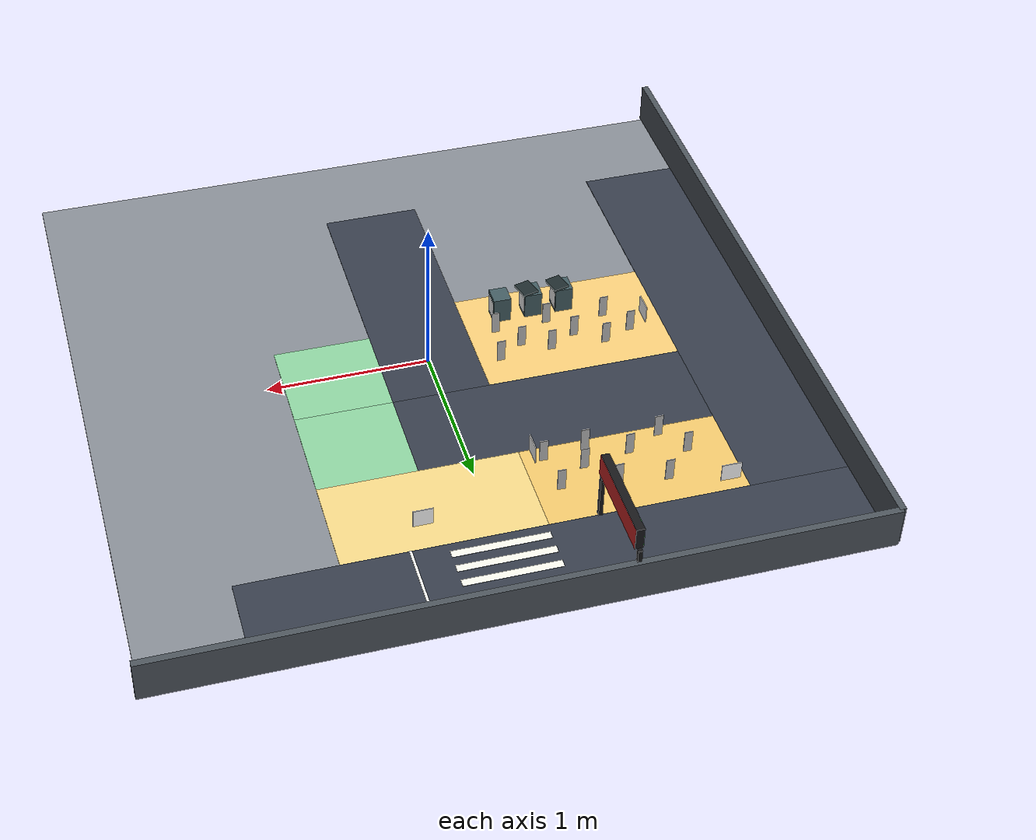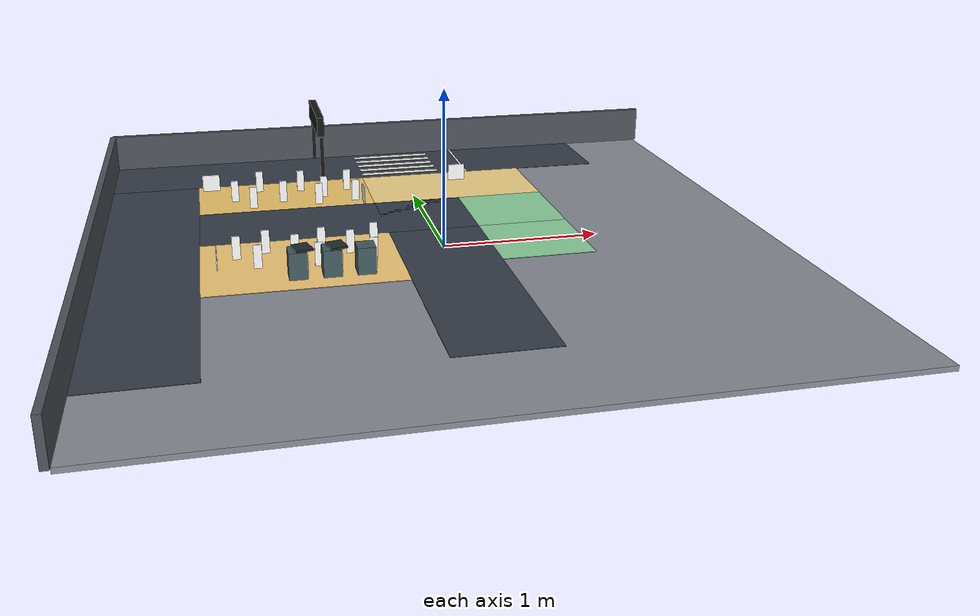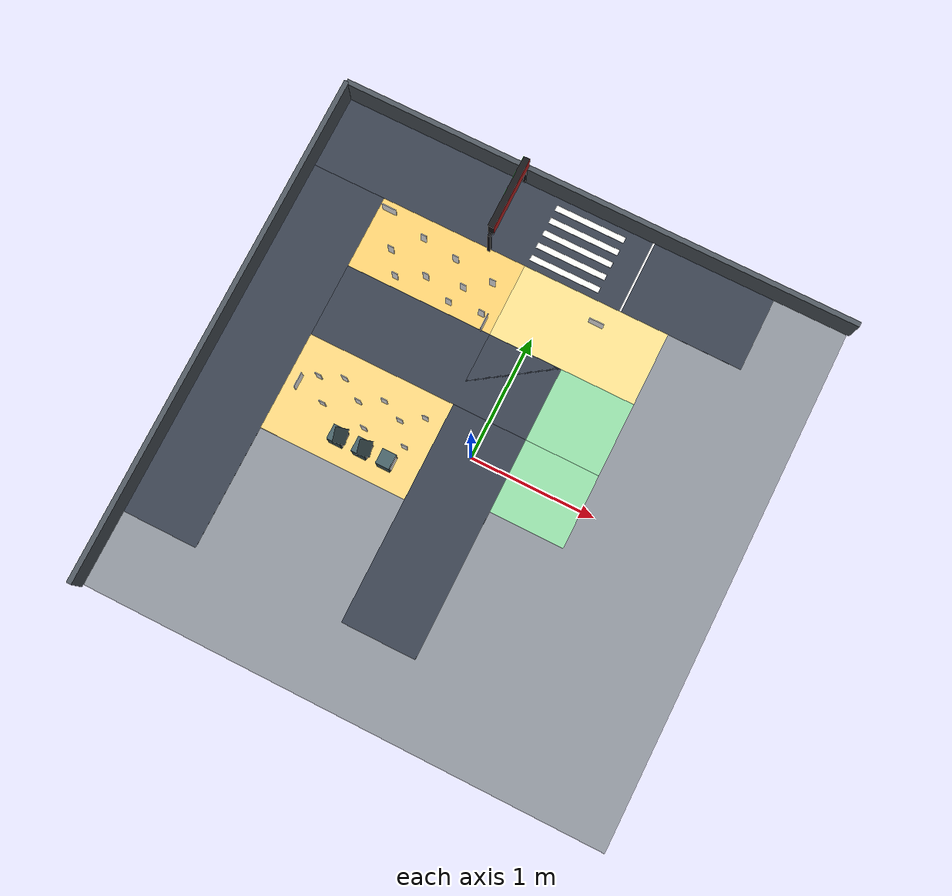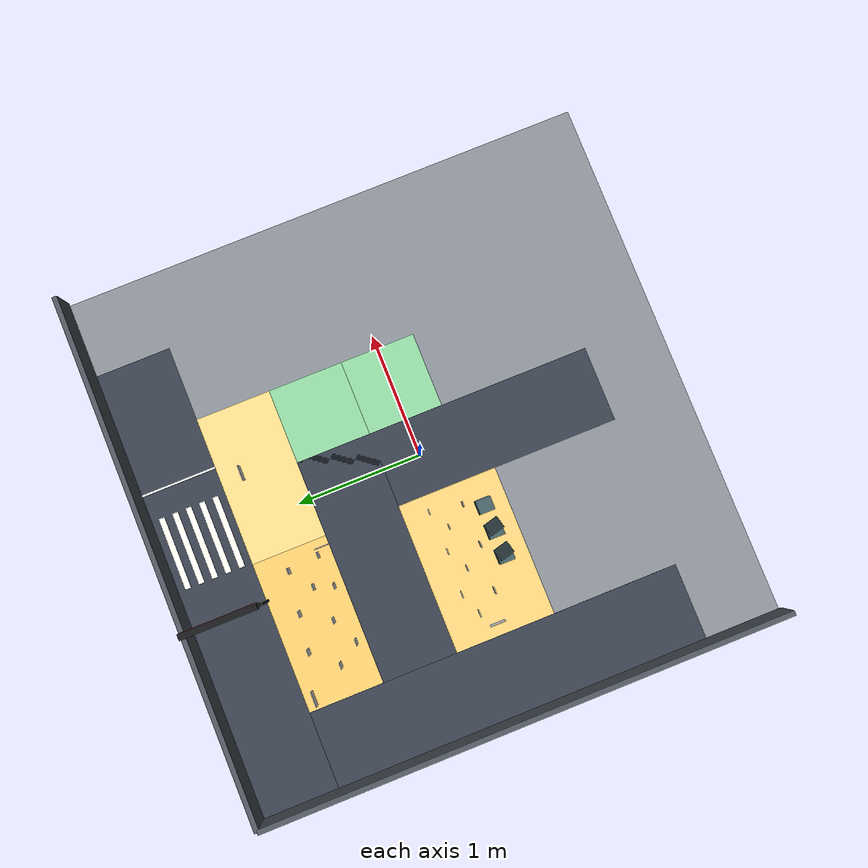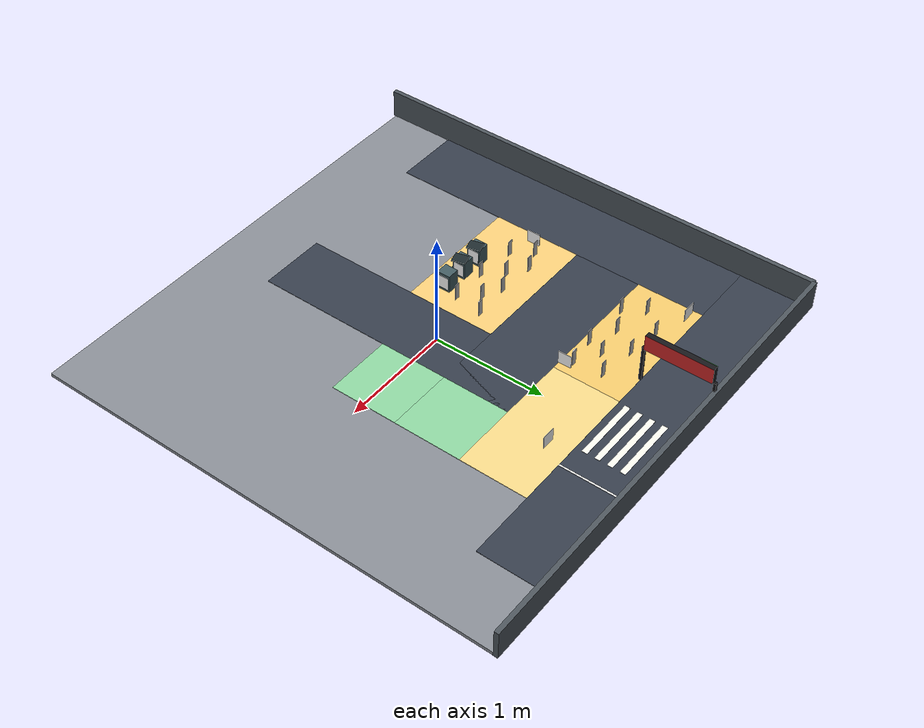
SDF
<sdf version="1.6">
 <world name="sq_community_4p2">
  <include><uri>model://sun</uri></include>
  <model name="sq4_floor">
   <static>true</static>
   <link name="floor">
    <visual name="floor_vis">
     <pose>0.0000 0.0000 -0.0150 0 0 0.00000</pose>
     <geometry><box><size>4.2000 4.2000 0.0300</size></box></geometry>
     <material>
      <ambient>0.5300 0.5500 0.5800 1.0000</ambient>
      <diffuse>0.5300 0.5500 0.5800 1.0000</diffuse>
     </material>
    </visual>
    <collision name="floor_col">
     <pose>0.0000 0.0000 -0.0150 0 0 0.00000</pose>
     <geometry><box><size>4.2000 4.2000 0.0300</size></box></geometry>
    </collision>
   </link>
  </model>
  <model name="sq4_road_top">
   <static>true</static>
   <pose>-0.3000 1.8000 0.0000 0 0 0.00000</pose>
   <link name="surface">
    <visual name="surface_vis">
     <pose>0.0000 0.0000 0.0015 0 0 0.00000</pose>
     <geometry><box><size>3.6000 0.6000 0.0030</size></box></geometry>
     <material>
      <ambient>0.2100 0.2400 0.2900 1.0000</ambient>
      <diffuse>0.2100 0.2400 0.2900 1.0000</diffuse>
     </material>
    </visual>
   </link>
  </model>
  <model name="sq4_road_west">
   <static>true</static>
   <pose>-1.8000 0.0000 0.0000 0 0 0.00000</pose>
   <link name="surface">
    <visual name="surface_vis">
     <pose>0.0000 0.0000 0.0015 0 0 0.00000</pose>
     <geometry><box><size>0.6000 3.0000 0.0030</size></box></geometry>
     <material>
      <ambient>0.2100 0.2400 0.2900 1.0000</ambient>
      <diffuse>0.2100 0.2400 0.2900 1.0000</diffuse>
     </material>
    </visual>
   </link>
  </model>
  <model name="sq4_road_connector">
   <static>true</static>
   <pose>-0.6000 0.6000 0.0000 0 0 0.00000</pose>
   <link name="surface">
    <visual name="surface_vis">
     <pose>0.0000 0.0000 0.0015 0 0 0.00000</pose>
     <geometry><box><size>1.8000 0.6000 0.0030</size></box></geometry>
     <material>
      <ambient>0.2100 0.2400 0.2900 1.0000</ambient>
      <diffuse>0.2100 0.2400 0.2900 1.0000</diffuse>
     </material>
    </visual>
   </link>
  </model>
  <model name="sq4_road_central">
   <static>true</static>
   <pose>0.0000 -0.3000 0.0000 0 0 0.00000</pose>
   <link name="surface">
    <visual name="surface_vis">
     <pose>0.0000 0.0000 0.0015 0 0 0.00000</pose>
     <geometry><box><size>0.6000 2.4000 0.0030</size></box></geometry>
     <material>
      <ambient>0.2100 0.2400 0.2900 1.0000</ambient>
      <diffuse>0.2100 0.2400 0.2900 1.0000</diffuse>
     </material>
    </visual>
   </link>
  </model>
  <model name="sq4_zone_a_people">
   <static>true</static>
   <pose>-0.9000 1.2000 0.0000 0 0 0.00000</pose>
   <link name="surface">
    <visual name="surface_vis">
     <pose>0.0000 0.0000 0.0018 0 0 0.00000</pose>
     <geometry><box><size>1.2000 0.6000 0.0035</size></box></geometry>
     <material>
      <ambient>0.9400 0.7800 0.4200 1.0000</ambient>
      <diffuse>0.9400 0.7800 0.4200 1.0000</diffuse>
     </material>
    </visual>
   </link>
  </model>
  <model name="sq4_zone_a_street">
   <static>true</static>
   <pose>0.3000 1.2000 0.0000 0 0 0.00000</pose>
   <link name="surface">
    <visual name="surface_vis">
     <pose>0.0000 0.0000 0.0018 0 0 0.00000</pose>
     <geometry><box><size>1.2000 0.6000 0.0035</size></box></geometry>
     <material>
      <ambient>0.9500 0.8400 0.5300 1.0000</ambient>
      <diffuse>0.9500 0.8400 0.5300 1.0000</diffuse>
     </material>
    </visual>
   </link>
  </model>
  <model name="sq4_zone_b_people">
   <static>true</static>
   <pose>-0.9000 -0.1000 0.0000 0 0 0.00000</pose>
   <link name="surface">
    <visual name="surface_vis">
     <pose>0.0000 0.0000 0.0018 0 0 0.00000</pose>
     <geometry><box><size>1.2000 0.8000 0.0035</size></box></geometry>
     <material>
      <ambient>0.9600 0.8000 0.4700 1.0000</ambient>
      <diffuse>0.9600 0.8000 0.4700 1.0000</diffuse>
     </material>
    </visual>
   </link>
  </model>
  <model name="sq4_zone_building_A">
   <static>true</static>
   <pose>0.6000 0.6000 0.0000 0 0 0.00000</pose>
   <link name="surface">
    <visual name="surface_vis">
     <pose>0.0000 0.0000 0.0018 0 0 0.00000</pose>
     <geometry><box><size>0.6000 0.6000 0.0035</size></box></geometry>
     <material>
      <ambient>0.5500 0.8200 0.6200 1.0000</ambient>
      <diffuse>0.5500 0.8200 0.6200 1.0000</diffuse>
     </material>
    </visual>
   </link>
  </model>
  <model name="sq4_zone_building_B">
   <static>true</static>
   <pose>0.6000 0.0000 0.0000 0 0 0.00000</pose>
   <link name="surface">
    <visual name="surface_vis">
     <pose>0.0000 0.0000 0.0018 0 0 0.00000</pose>
     <geometry><box><size>0.6000 0.6000 0.0035</size></box></geometry>
     <material>
      <ambient>0.5500 0.8200 0.6200 1.0000</ambient>
      <diffuse>0.5500 0.8200 0.6200 1.0000</diffuse>
     </material>
    </visual>
   </link>
  </model>
  <model name="sq4_boundary_north">
   <static>true</static>
   <pose>0.0000 2.1200 0.0000 0 0 0.00000</pose>
   <link name="wall">
    <visual name="wall_vis">
     <pose>0.0000 0.0000 0.1300 0 0 0.00000</pose>
     <geometry><box><size>4.2400 0.0400 0.2600</size></box></geometry>
     <material>
      <ambient>0.3000 0.3300 0.3600 1.0000</ambient>
      <diffuse>0.3000 0.3300 0.3600 1.0000</diffuse>
     </material>
    </visual>
    <collision name="wall_col">
     <pose>0.0000 0.0000 0.1300 0 0 0.00000</pose>
     <geometry><box><size>4.2400 0.0400 0.2600</size></box></geometry>
    </collision>
   </link>
  </model>
  <model name="sq4_boundary_west">
   <static>true</static>
   <pose>-2.1200 0.0000 0.0000 0 0 0.00000</pose>
   <link name="wall">
    <visual name="wall_vis">
     <pose>0.0000 0.0000 0.1300 0 0 0.00000</pose>
     <geometry><box><size>0.0400 4.2400 0.2600</size></box></geometry>
     <material>
      <ambient>0.3000 0.3300 0.3600 1.0000</ambient>
      <diffuse>0.3000 0.3300 0.3600 1.0000</diffuse>
     </material>
    </visual>
    <collision name="wall_col">
     <pose>0.0000 0.0000 0.1300 0 0 0.00000</pose>
     <geometry><box><size>0.0400 4.2400 0.2600</size></box></geometry>
    </collision>
   </link>
  </model>
  <model name="sq4_crossing_upper_0">
   <static>true</static>
   <pose>0.0000 1.5800 0.0000 0 0 0.00000</pose>
   <link name="surface">
    <visual name="surface_vis">
     <pose>0.0000 0.0000 0.0025 0 0 0.00000</pose>
     <geometry><box><size>0.5800 0.0480 0.0050</size></box></geometry>
     <material>
      <ambient>0.9600 0.9600 0.9200 1.0000</ambient>
      <diffuse>0.9600 0.9600 0.9200 1.0000</diffuse>
     </material>
    </visual>
   </link>
  </model>
  <model name="sq4_crossing_upper_1">
   <static>true</static>
   <pose>0.0000 1.6900 0.0000 0 0 0.00000</pose>
   <link name="surface">
    <visual name="surface_vis">
     <pose>0.0000 0.0000 0.0025 0 0 0.00000</pose>
     <geometry><box><size>0.5800 0.0480 0.0050</size></box></geometry>
     <material>
      <ambient>0.9600 0.9600 0.9200 1.0000</ambient>
      <diffuse>0.9600 0.9600 0.9200 1.0000</diffuse>
     </material>
    </visual>
   </link>
  </model>
  <model name="sq4_crossing_upper_2">
   <static>true</static>
   <pose>0.0000 1.8000 0.0000 0 0 0.00000</pose>
   <link name="surface">
    <visual name="surface_vis">
     <pose>0.0000 0.0000 0.0025 0 0 0.00000</pose>
     <geometry><box><size>0.5800 0.0480 0.0050</size></box></geometry>
     <material>
      <ambient>0.9600 0.9600 0.9200 1.0000</ambient>
      <diffuse>0.9600 0.9600 0.9200 1.0000</diffuse>
     </material>
    </visual>
   </link>
  </model>
  <model name="sq4_crossing_upper_3">
   <static>true</static>
   <pose>0.0000 1.9100 0.0000 0 0 0.00000</pose>
   <link name="surface">
    <visual name="surface_vis">
     <pose>0.0000 0.0000 0.0025 0 0 0.00000</pose>
     <geometry><box><size>0.5800 0.0480 0.0050</size></box></geometry>
     <material>
      <ambient>0.9600 0.9600 0.9200 1.0000</ambient>
      <diffuse>0.9600 0.9600 0.9200 1.0000</diffuse>
     </material>
    </visual>
   </link>
  </model>
  <model name="sq4_crossing_upper_4">
   <static>true</static>
   <pose>0.0000 2.0200 0.0000 0 0 0.00000</pose>
   <link name="surface">
    <visual name="surface_vis">
     <pose>0.0000 0.0000 0.0025 0 0 0.00000</pose>
     <geometry><box><size>0.5800 0.0480 0.0050</size></box></geometry>
     <material>
      <ambient>0.9600 0.9600 0.9200 1.0000</ambient>
      <diffuse>0.9600 0.9600 0.9200 1.0000</diffuse>
     </material>
    </visual>
   </link>
  </model>
  <model name="sq4_stop_upper">
   <static>true</static>
   <pose>0.5000 1.8000 0.0000 0 0 0.00000</pose>
   <link name="surface">
    <visual name="surface_vis">
     <pose>0.0000 0.0000 0.0030 0 0 0.00000</pose>
     <geometry><box><size>0.0160 0.6000 0.0060</size></box></geometry>
     <material>
      <ambient>0.9800 0.9800 0.9600 1.0000</ambient>
      <diffuse>0.9800 0.9800 0.9600 1.0000</diffuse>
     </material>
    </visual>
   </link>
  </model>
  <model name="sq4_person_01">
   <static>true</static>
   <pose>-1.25000 1.14000 .004 0 0 1.57079633</pose>
   <link name="panel">
    <visual name="backing">
     <pose>-.0001 0 .075 0 0 0</pose>
     <geometry><box><size>.0048 .05 .15</size></box></geometry>
     <material>
      <lighting>false</lighting>
      <ambient>1 1 1 1</ambient>
      <diffuse>1 1 1 1</diffuse>
      <emissive>1 1 1 1</emissive>
     </material>
    </visual>
    <visual name="portrait">
     <pose>.0024 0 .075 0 0 0</pose>
     <geometry><box><size>.0002 .05 .15</size></box></geometry>
     <material>
      <script>
       <uri>model://sq_competition_assets/materials/scripts</uri>
       <uri>model://sq_competition_assets/materials/textures</uri>
       <name>SQ4_Person_01</name>
      </script>
     </material>
    </visual>
    <collision name="panel_collision">
     <pose>0 0 .075 0 0 0</pose>
     <geometry><box><size>.005 .05 .15</size></box></geometry>
    </collision>
   </link>
  </model>
  <model name="sq4_person_02">
   <static>true</static>
   <pose>-1.07000 1.33000 .004 0 0 1.57079633</pose>
   <link name="panel">
    <visual name="backing">
     <pose>-.0001 0 .075 0 0 0</pose>
     <geometry><box><size>.0048 .05 .15</size></box></geometry>
     <material>
      <lighting>false</lighting>
      <ambient>1 1 1 1</ambient>
      <diffuse>1 1 1 1</diffuse>
      <emissive>1 1 1 1</emissive>
     </material>
    </visual>
    <visual name="portrait">
     <pose>.0024 0 .075 0 0 0</pose>
     <geometry><box><size>.0002 .05 .15</size></box></geometry>
     <material>
      <script>
       <uri>model://sq_competition_assets/materials/scripts</uri>
       <uri>model://sq_competition_assets/materials/textures</uri>
       <name>SQ4_Person_02</name>
      </script>
     </material>
    </visual>
    <collision name="panel_collision">
     <pose>0 0 .075 0 0 0</pose>
     <geometry><box><size>.005 .05 .15</size></box></geometry>
    </collision>
   </link>
  </model>
  <model name="sq4_person_03">
   <static>true</static>
   <pose>-0.92000 1.07000 .004 0 0 1.57079633</pose>
   <link name="panel">
    <visual name="backing">
     <pose>-.0001 0 .075 0 0 0</pose>
     <geometry><box><size>.0048 .05 .15</size></box></geometry>
     <material>
      <lighting>false</lighting>
      <ambient>1 1 1 1</ambient>
      <diffuse>1 1 1 1</diffuse>
      <emissive>1 1 1 1</emissive>
     </material>
    </visual>
    <visual name="portrait">
     <pose>.0024 0 .075 0 0 0</pose>
     <geometry><box><size>.0002 .05 .15</size></box></geometry>
     <material>
      <script>
       <uri>model://sq_competition_assets/materials/scripts</uri>
       <uri>model://sq_competition_assets/materials/textures</uri>
       <name>SQ4_Person_03</name>
      </script>
     </material>
    </visual>
    <collision name="panel_collision">
     <pose>0 0 .075 0 0 0</pose>
     <geometry><box><size>.005 .05 .15</size></box></geometry>
    </collision>
   </link>
  </model>
  <model name="sq4_person_04">
   <static>true</static>
   <pose>-0.78000 1.29000 .004 0 0 1.57079633</pose>
   <link name="panel">
    <visual name="backing">
     <pose>-.0001 0 .075 0 0 0</pose>
     <geometry><box><size>.0048 .05 .15</size></box></geometry>
     <material>
      <lighting>false</lighting>
      <ambient>1 1 1 1</ambient>
      <diffuse>1 1 1 1</diffuse>
      <emissive>1 1 1 1</emissive>
     </material>
    </visual>
    <visual name="portrait">
     <pose>.0024 0 .075 0 0 0</pose>
     <geometry><box><size>.0002 .05 .15</size></box></geometry>
     <material>
      <script>
       <uri>model://sq_competition_assets/materials/scripts</uri>
       <uri>model://sq_competition_assets/materials/textures</uri>
       <name>SQ4_Person_04</name>
      </script>
     </material>
    </visual>
    <collision name="panel_collision">
     <pose>0 0 .075 0 0 0</pose>
     <geometry><box><size>.005 .05 .15</size></box></geometry>
    </collision>
   </link>
  </model>
  <model name="sq4_person_05">
   <static>true</static>
   <pose>-0.63000 1.12000 .004 0 0 1.57079633</pose>
   <link name="panel">
    <visual name="backing">
     <pose>-.0001 0 .075 0 0 0</pose>
     <geometry><box><size>.0048 .05 .15</size></box></geometry>
     <material>
      <lighting>false</lighting>
      <ambient>1 1 1 1</ambient>
      <diffuse>1 1 1 1</diffuse>
      <emissive>1 1 1 1</emissive>
     </material>
    </visual>
    <visual name="portrait">
     <pose>.0024 0 .075 0 0 0</pose>
     <geometry><box><size>.0002 .05 .15</size></box></geometry>
     <material>
      <script>
       <uri>model://sq_competition_assets/materials/scripts</uri>
       <uri>model://sq_competition_assets/materials/textures</uri>
       <name>SQ4_Person_05</name>
      </script>
     </material>
    </visual>
    <collision name="panel_collision">
     <pose>0 0 .075 0 0 0</pose>
     <geometry><box><size>.005 .05 .15</size></box></geometry>
    </collision>
   </link>
  </model>
  <model name="sq4_person_06">
   <static>true</static>
   <pose>-0.45000 1.25000 .004 0 0 1.57079633</pose>
   <link name="panel">
    <visual name="backing">
     <pose>-.0001 0 .075 0 0 0</pose>
     <geometry><box><size>.0048 .05 .15</size></box></geometry>
     <material>
      <lighting>false</lighting>
      <ambient>1 1 1 1</ambient>
      <diffuse>1 1 1 1</diffuse>
      <emissive>1 1 1 1</emissive>
     </material>
    </visual>
    <visual name="portrait">
     <pose>.0024 0 .075 0 0 0</pose>
     <geometry><box><size>.0002 .05 .15</size></box></geometry>
     <material>
      <script>
       <uri>model://sq_competition_assets/materials/scripts</uri>
       <uri>model://sq_competition_assets/materials/textures</uri>
       <name>SQ4_Person_06</name>
      </script>
     </material>
    </visual>
    <collision name="panel_collision">
     <pose>0 0 .075 0 0 0</pose>
     <geometry><box><size>.005 .05 .15</size></box></geometry>
    </collision>
   </link>
  </model>
  <model name="sq4_person_07">
   <static>true</static>
   <pose>-1.13000 0.97000 .004 0 0 1.57079633</pose>
   <link name="panel">
    <visual name="backing">
     <pose>-.0001 0 .075 0 0 0</pose>
     <geometry><box><size>.0048 .05 .15</size></box></geometry>
     <material>
      <lighting>false</lighting>
      <ambient>1 1 1 1</ambient>
      <diffuse>1 1 1 1</diffuse>
      <emissive>1 1 1 1</emissive>
     </material>
    </visual>
    <visual name="portrait">
     <pose>.0024 0 .075 0 0 0</pose>
     <geometry><box><size>.0002 .05 .15</size></box></geometry>
     <material>
      <script>
       <uri>model://sq_competition_assets/materials/scripts</uri>
       <uri>model://sq_competition_assets/materials/textures</uri>
       <name>SQ4_Person_07</name>
      </script>
     </material>
    </visual>
    <collision name="panel_collision">
     <pose>0 0 .075 0 0 0</pose>
     <geometry><box><size>.005 .05 .15</size></box></geometry>
    </collision>
   </link>
  </model>
  <model name="sq4_person_08">
   <static>true</static>
   <pose>-0.68000 0.97000 .004 0 0 1.57079633</pose>
   <link name="panel">
    <visual name="backing">
     <pose>-.0001 0 .075 0 0 0</pose>
     <geometry><box><size>.0048 .05 .15</size></box></geometry>
     <material>
      <lighting>false</lighting>
      <ambient>1 1 1 1</ambient>
      <diffuse>1 1 1 1</diffuse>
      <emissive>1 1 1 1</emissive>
     </material>
    </visual>
    <visual name="portrait">
     <pose>.0024 0 .075 0 0 0</pose>
     <geometry><box><size>.0002 .05 .15</size></box></geometry>
     <material>
      <script>
       <uri>model://sq_competition_assets/materials/scripts</uri>
       <uri>model://sq_competition_assets/materials/textures</uri>
       <name>SQ4_Person_08</name>
      </script>
     </material>
    </visual>
    <collision name="panel_collision">
     <pose>0 0 .075 0 0 0</pose>
     <geometry><box><size>.005 .05 .15</size></box></geometry>
    </collision>
   </link>
  </model>
  <model name="sq4_person_09">
   <static>true</static>
   <pose>-0.42000 1.00000 .004 0 0 1.57079633</pose>
   <link name="panel">
    <visual name="backing">
     <pose>-.0001 0 .075 0 0 0</pose>
     <geometry><box><size>.0048 .05 .15</size></box></geometry>
     <material>
      <lighting>false</lighting>
      <ambient>1 1 1 1</ambient>
      <diffuse>1 1 1 1</diffuse>
      <emissive>1 1 1 1</emissive>
     </material>
    </visual>
    <visual name="portrait">
     <pose>.0024 0 .075 0 0 0</pose>
     <geometry><box><size>.0002 .05 .15</size></box></geometry>
     <material>
      <script>
       <uri>model://sq_competition_assets/materials/scripts</uri>
       <uri>model://sq_competition_assets/materials/textures</uri>
       <name>SQ4_Person_09</name>
      </script>
     </material>
    </visual>
    <collision name="panel_collision">
     <pose>0 0 .075 0 0 0</pose>
     <geometry><box><size>.005 .05 .15</size></box></geometry>
    </collision>
   </link>
  </model>
  <model name="sq4_person_10">
   <static>true</static>
   <pose>-1.28000 0.03000 .004 0 0 1.57079633</pose>
   <link name="panel">
    <visual name="backing">
     <pose>-.0001 0 .075 0 0 0</pose>
     <geometry><box><size>.0048 .05 .15</size></box></geometry>
     <material>
      <lighting>false</lighting>
      <ambient>1 1 1 1</ambient>
      <diffuse>1 1 1 1</diffuse>
      <emissive>1 1 1 1</emissive>
     </material>
    </visual>
    <visual name="portrait">
     <pose>.0024 0 .075 0 0 0</pose>
     <geometry><box><size>.0002 .05 .15</size></box></geometry>
     <material>
      <script>
       <uri>model://sq_competition_assets/materials/scripts</uri>
       <uri>model://sq_competition_assets/materials/textures</uri>
       <name>SQ4_Person_10</name>
      </script>
     </material>
    </visual>
    <collision name="panel_collision">
     <pose>0 0 .075 0 0 0</pose>
     <geometry><box><size>.005 .05 .15</size></box></geometry>
    </collision>
   </link>
  </model>
  <model name="sq4_person_11">
   <static>true</static>
   <pose>-1.10000 0.10000 .004 0 0 1.57079633</pose>
   <link name="panel">
    <visual name="backing">
     <pose>-.0001 0 .075 0 0 0</pose>
     <geometry><box><size>.0048 .05 .15</size></box></geometry>
     <material>
      <lighting>false</lighting>
      <ambient>1 1 1 1</ambient>
      <diffuse>1 1 1 1</diffuse>
      <emissive>1 1 1 1</emissive>
     </material>
    </visual>
    <visual name="portrait">
     <pose>.0024 0 .075 0 0 0</pose>
     <geometry><box><size>.0002 .05 .15</size></box></geometry>
     <material>
      <script>
       <uri>model://sq_competition_assets/materials/scripts</uri>
       <uri>model://sq_competition_assets/materials/textures</uri>
       <name>SQ4_Person_11</name>
      </script>
     </material>
    </visual>
    <collision name="panel_collision">
     <pose>0 0 .075 0 0 0</pose>
     <geometry><box><size>.005 .05 .15</size></box></geometry>
    </collision>
   </link>
  </model>
  <model name="sq4_person_12">
   <static>true</static>
   <pose>-0.93000 -0.01000 .004 0 0 1.57079633</pose>
   <link name="panel">
    <visual name="backing">
     <pose>-.0001 0 .075 0 0 0</pose>
     <geometry><box><size>.0048 .05 .15</size></box></geometry>
     <material>
      <lighting>false</lighting>
      <ambient>1 1 1 1</ambient>
      <diffuse>1 1 1 1</diffuse>
      <emissive>1 1 1 1</emissive>
     </material>
    </visual>
    <visual name="portrait">
     <pose>.0024 0 .075 0 0 0</pose>
     <geometry><box><size>.0002 .05 .15</size></box></geometry>
     <material>
      <script>
       <uri>model://sq_competition_assets/materials/scripts</uri>
       <uri>model://sq_competition_assets/materials/textures</uri>
       <name>SQ4_Person_12</name>
      </script>
     </material>
    </visual>
    <collision name="panel_collision">
     <pose>0 0 .075 0 0 0</pose>
     <geometry><box><size>.005 .05 .15</size></box></geometry>
    </collision>
   </link>
  </model>
  <model name="sq4_person_13">
   <static>true</static>
   <pose>-0.76000 0.08000 .004 0 0 1.57079633</pose>
   <link name="panel">
    <visual name="backing">
     <pose>-.0001 0 .075 0 0 0</pose>
     <geometry><box><size>.0048 .05 .15</size></box></geometry>
     <material>
      <lighting>false</lighting>
      <ambient>1 1 1 1</ambient>
      <diffuse>1 1 1 1</diffuse>
      <emissive>1 1 1 1</emissive>
     </material>
    </visual>
    <visual name="portrait">
     <pose>.0024 0 .075 0 0 0</pose>
     <geometry><box><size>.0002 .05 .15</size></box></geometry>
     <material>
      <script>
       <uri>model://sq_competition_assets/materials/scripts</uri>
       <uri>model://sq_competition_assets/materials/textures</uri>
       <name>SQ4_Person_13</name>
      </script>
     </material>
    </visual>
    <collision name="panel_collision">
     <pose>0 0 .075 0 0 0</pose>
     <geometry><box><size>.005 .05 .15</size></box></geometry>
    </collision>
   </link>
  </model>
  <model name="sq4_person_14">
   <static>true</static>
   <pose>-0.59000 0.00000 .004 0 0 1.57079633</pose>
   <link name="panel">
    <visual name="backing">
     <pose>-.0001 0 .075 0 0 0</pose>
     <geometry><box><size>.0048 .05 .15</size></box></geometry>
     <material>
      <lighting>false</lighting>
      <ambient>1 1 1 1</ambient>
      <diffuse>1 1 1 1</diffuse>
      <emissive>1 1 1 1</emissive>
     </material>
    </visual>
    <visual name="portrait">
     <pose>.0024 0 .075 0 0 0</pose>
     <geometry><box><size>.0002 .05 .15</size></box></geometry>
     <material>
      <script>
       <uri>model://sq_competition_assets/materials/scripts</uri>
       <uri>model://sq_competition_assets/materials/textures</uri>
       <name>SQ4_Person_14</name>
      </script>
     </material>
    </visual>
    <collision name="panel_collision">
     <pose>0 0 .075 0 0 0</pose>
     <geometry><box><size>.005 .05 .15</size></box></geometry>
    </collision>
   </link>
  </model>
  <model name="sq4_person_15">
   <static>true</static>
   <pose>-0.43000 0.10000 .004 0 0 1.57079633</pose>
   <link name="panel">
    <visual name="backing">
     <pose>-.0001 0 .075 0 0 0</pose>
     <geometry><box><size>.0048 .05 .15</size></box></geometry>
     <material>
      <lighting>false</lighting>
      <ambient>1 1 1 1</ambient>
      <diffuse>1 1 1 1</diffuse>
      <emissive>1 1 1 1</emissive>
     </material>
    </visual>
    <visual name="portrait">
     <pose>.0024 0 .075 0 0 0</pose>
     <geometry><box><size>.0002 .05 .15</size></box></geometry>
     <material>
      <script>
       <uri>model://sq_competition_assets/materials/scripts</uri>
       <uri>model://sq_competition_assets/materials/textures</uri>
       <name>SQ4_Person_15</name>
      </script>
     </material>
    </visual>
    <collision name="panel_collision">
     <pose>0 0 .075 0 0 0</pose>
     <geometry><box><size>.005 .05 .15</size></box></geometry>
    </collision>
   </link>
  </model>
  <model name="sq4_person_16">
   <static>true</static>
   <pose>-1.16000 -0.14000 .004 0 0 1.57079633</pose>
   <link name="panel">
    <visual name="backing">
     <pose>-.0001 0 .075 0 0 0</pose>
     <geometry><box><size>.0048 .05 .15</size></box></geometry>
     <material>
      <lighting>false</lighting>
      <ambient>1 1 1 1</ambient>
      <diffuse>1 1 1 1</diffuse>
      <emissive>1 1 1 1</emissive>
     </material>
    </visual>
    <visual name="portrait">
     <pose>.0024 0 .075 0 0 0</pose>
     <geometry><box><size>.0002 .05 .15</size></box></geometry>
     <material>
      <script>
       <uri>model://sq_competition_assets/materials/scripts</uri>
       <uri>model://sq_competition_assets/materials/textures</uri>
       <name>SQ4_Person_16</name>
      </script>
     </material>
    </visual>
    <collision name="panel_collision">
     <pose>0 0 .075 0 0 0</pose>
     <geometry><box><size>.005 .05 .15</size></box></geometry>
    </collision>
   </link>
  </model>
  <model name="sq4_person_17">
   <static>true</static>
   <pose>-0.80000 -0.17000 .004 0 0 1.57079633</pose>
   <link name="panel">
    <visual name="backing">
     <pose>-.0001 0 .075 0 0 0</pose>
     <geometry><box><size>.0048 .05 .15</size></box></geometry>
     <material>
      <lighting>false</lighting>
      <ambient>1 1 1 1</ambient>
      <diffuse>1 1 1 1</diffuse>
      <emissive>1 1 1 1</emissive>
     </material>
    </visual>
    <visual name="portrait">
     <pose>.0024 0 .075 0 0 0</pose>
     <geometry><box><size>.0002 .05 .15</size></box></geometry>
     <material>
      <script>
       <uri>model://sq_competition_assets/materials/scripts</uri>
       <uri>model://sq_competition_assets/materials/textures</uri>
       <name>SQ4_Person_17</name>
      </script>
     </material>
    </visual>
    <collision name="panel_collision">
     <pose>0 0 .075 0 0 0</pose>
     <geometry><box><size>.005 .05 .15</size></box></geometry>
    </collision>
   </link>
  </model>
  <model name="sq4_person_18">
   <static>true</static>
   <pose>-0.47000 -0.16000 .004 0 0 1.57079633</pose>
   <link name="panel">
    <visual name="backing">
     <pose>-.0001 0 .075 0 0 0</pose>
     <geometry><box><size>.0048 .05 .15</size></box></geometry>
     <material>
      <lighting>false</lighting>
      <ambient>1 1 1 1</ambient>
      <diffuse>1 1 1 1</diffuse>
      <emissive>1 1 1 1</emissive>
     </material>
    </visual>
    <visual name="portrait">
     <pose>.0024 0 .075 0 0 0</pose>
     <geometry><box><size>.0002 .05 .15</size></box></geometry>
     <material>
      <script>
       <uri>model://sq_competition_assets/materials/scripts</uri>
       <uri>model://sq_competition_assets/materials/textures</uri>
       <name>SQ4_Person_18</name>
      </script>
     </material>
    </visual>
    <collision name="panel_collision">
     <pose>0 0 .075 0 0 0</pose>
     <geometry><box><size>.005 .05 .15</size></box></geometry>
    </collision>
   </link>
  </model>
  <model name="sq4_bin_hazard">
   <static>true</static>
   <pose>-0.9400 -0.3100 0.0000 0 0 0.00000</pose>
   <link name="body">
    <visual name="body_vis">
     <pose>0.0000 0.0000 0.0850 0 0 0.00000</pose>
     <geometry><box><size>0.1100 0.1200 0.1700</size></box></geometry>
     <material>
      <ambient>0.2600 0.3600 0.3800 1.0000</ambient>
      <diffuse>0.2600 0.3600 0.3800 1.0000</diffuse>
     </material>
    </visual>
    <collision name="body_col">
     <pose>0.0000 0.0000 0.0850 0 0 0.00000</pose>
     <geometry><box><size>0.1100 0.1200 0.1700</size></box></geometry>
    </collision>
   </link>
   <link name="front">
    <visual name="front_vis">
     <pose>0.0570 0.0000 0.0850 0 0 0.00000</pose>
     <geometry><box><size>0.0030 0.1000 0.1200</size></box></geometry>
     <material>
      <script>
       <uri>model://sq_textures/materials/scripts</uri>
       <uri>model://sq_textures/materials/textures</uri>
       <name>SQ_bin_hazard</name>
      </script>
      <ambient>1 1 1 1</ambient>
      <diffuse>1 1 1 1</diffuse>
     </material>
    </visual>
   </link>
   <link name="open_lid">
    <visual name="open_lid_vis">
     <pose>0.0300 0.0000 0.1800 0 0 0.25000</pose>
     <geometry><box><size>0.1000 0.1200 0.0120</size></box></geometry>
     <material>
      <ambient>0.1200 0.1700 0.1800 1.0000</ambient>
      <diffuse>0.1200 0.1700 0.1800 1.0000</diffuse>
     </material>
    </visual>
   </link>
  </model>
  <model name="sq4_bin_kitchen">
   <static>true</static>
   <pose>-0.7400 -0.3100 0.0000 0 0 0.00000</pose>
   <link name="body">
    <visual name="body_vis">
     <pose>0.0000 0.0000 0.0850 0 0 0.00000</pose>
     <geometry><box><size>0.1100 0.1200 0.1700</size></box></geometry>
     <material>
      <ambient>0.2600 0.3600 0.3800 1.0000</ambient>
      <diffuse>0.2600 0.3600 0.3800 1.0000</diffuse>
     </material>
    </visual>
    <collision name="body_col">
     <pose>0.0000 0.0000 0.0850 0 0 0.00000</pose>
     <geometry><box><size>0.1100 0.1200 0.1700</size></box></geometry>
    </collision>
   </link>
   <link name="front">
    <visual name="front_vis">
     <pose>0.0570 0.0000 0.0850 0 0 0.00000</pose>
     <geometry><box><size>0.0030 0.1000 0.1200</size></box></geometry>
     <material>
      <script>
       <uri>model://sq_textures/materials/scripts</uri>
       <uri>model://sq_textures/materials/textures</uri>
       <name>SQ_bin_kitchen</name>
      </script>
      <ambient>1 1 1 1</ambient>
      <diffuse>1 1 1 1</diffuse>
     </material>
    </visual>
   </link>
   <link name="open_lid">
    <visual name="open_lid_vis">
     <pose>0.0300 0.0000 0.1800 0 0 0.25000</pose>
     <geometry><box><size>0.1000 0.1200 0.0120</size></box></geometry>
     <material>
      <ambient>0.1200 0.1700 0.1800 1.0000</ambient>
      <diffuse>0.1200 0.1700 0.1800 1.0000</diffuse>
     </material>
    </visual>
   </link>
  </model>
  <model name="sq4_bin_other">
   <static>true</static>
   <pose>-0.5400 -0.3100 0.0000 0 0 0.00000</pose>
   <link name="body">
    <visual name="body_vis">
     <pose>0.0000 0.0000 0.0850 0 0 0.00000</pose>
     <geometry><box><size>0.1100 0.1200 0.1700</size></box></geometry>
     <material>
      <ambient>0.2600 0.3600 0.3800 1.0000</ambient>
      <diffuse>0.2600 0.3600 0.3800 1.0000</diffuse>
     </material>
    </visual>
    <collision name="body_col">
     <pose>0.0000 0.0000 0.0850 0 0 0.00000</pose>
     <geometry><box><size>0.1100 0.1200 0.1700</size></box></geometry>
    </collision>
   </link>
   <link name="front">
    <visual name="front_vis">
     <pose>0.0570 0.0000 0.0850 0 0 0.00000</pose>
     <geometry><box><size>0.0030 0.1000 0.1200</size></box></geometry>
     <material>
      <script>
       <uri>model://sq_textures/materials/scripts</uri>
       <uri>model://sq_textures/materials/textures</uri>
       <name>SQ_bin_other</name>
      </script>
      <ambient>1 1 1 1</ambient>
      <diffuse>1 1 1 1</diffuse>
     </material>
    </visual>
   </link>
  </model>
  <model name="sq4_sign_speed30">
   <static>true</static>
   <pose>-1.4100 1.4200 0.0000 0 0 1.57080</pose>
   <link name="panel">
    <visual name="panel_vis">
     <pose>0.0000 0.0000 0.0600 0 0 0.00000</pose>
     <geometry><box><size>0.0050 0.1200 0.1200</size></box></geometry>
     <material>
      <script>
       <uri>model://sq_textures/materials/scripts</uri>
       <uri>model://sq_textures/materials/textures</uri>
       <name>SQ_sign_speed30</name>
      </script>
      <ambient>1 1 1 1</ambient>
      <diffuse>1 1 1 1</diffuse>
     </material>
    </visual>
   </link>
  </model>
  <model name="sq4_sign_crosswalk">
   <static>true</static>
   <pose>0.3800 1.3200 0.0000 0 0 1.57080</pose>
   <link name="panel">
    <visual name="panel_vis">
     <pose>0.0000 0.0000 0.0600 0 0 0.00000</pose>
     <geometry><box><size>0.0050 0.1200 0.1200</size></box></geometry>
     <material>
      <script>
       <uri>model://sq_textures/materials/scripts</uri>
       <uri>model://sq_textures/materials/textures</uri>
       <name>SQ_sign_crosswalk</name>
      </script>
      <ambient>1 1 1 1</ambient>
      <diffuse>1 1 1 1</diffuse>
     </material>
    </visual>
   </link>
  </model>
  <model name="sq4_sign_no_straight">
   <static>true</static>
   <pose>-1.4000 -0.0700 0.0000 0 0 3.14159</pose>
   <link name="panel">
    <visual name="panel_vis">
     <pose>0.0000 0.0000 0.0600 0 0 0.00000</pose>
     <geometry><box><size>0.0050 0.1200 0.1200</size></box></geometry>
     <material>
      <script>
       <uri>model://sq_textures/materials/scripts</uri>
       <uri>model://sq_textures/materials/textures</uri>
       <name>SQ_sign_no_straight</name>
      </script>
      <ambient>1 1 1 1</ambient>
      <diffuse>1 1 1 1</diffuse>
     </material>
    </visual>
   </link>
  </model>
  <model name="sq4_sign_turn_left">
   <static>true</static>
   <pose>-0.3700 0.9500 0.0000 0 0 3.14159</pose>
   <link name="panel">
    <visual name="panel_vis">
     <pose>0.0000 0.0000 0.0600 0 0 0.00000</pose>
     <geometry><box><size>0.0050 0.1200 0.1200</size></box></geometry>
     <material>
      <script>
       <uri>model://sq_textures/materials/scripts</uri>
       <uri>model://sq_textures/materials/textures</uri>
       <name>SQ_sign_turn_left</name>
      </script>
      <ambient>1 1 1 1</ambient>
      <diffuse>1 1 1 1</diffuse>
     </material>
    </visual>
   </link>
  </model>
  <include>
   <name>sq4_tl_upper</name>
   <pose>-0.6000 1.8000 0.0000 0 0 0.00000</pose>
   <uri>model://sq_traffic_light_4p2</uri>
  </include>
 </world>
</sdf>
